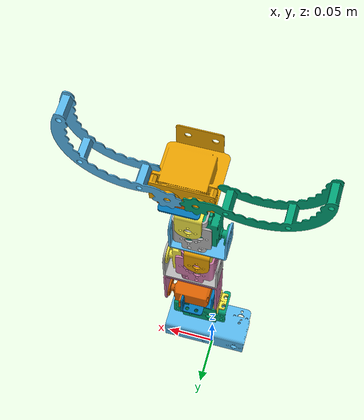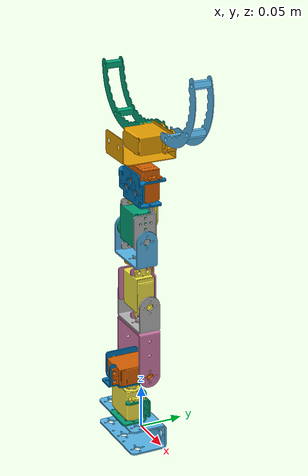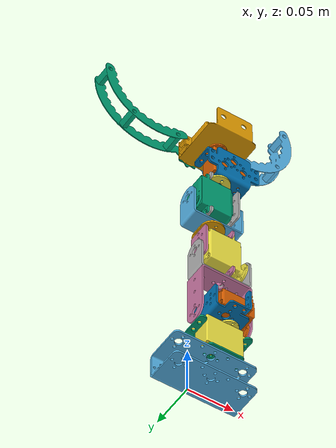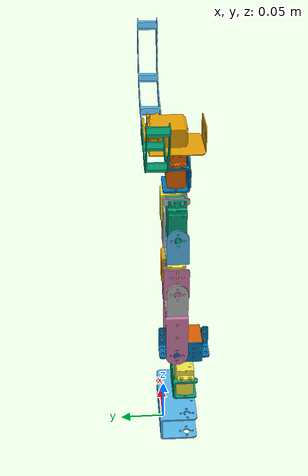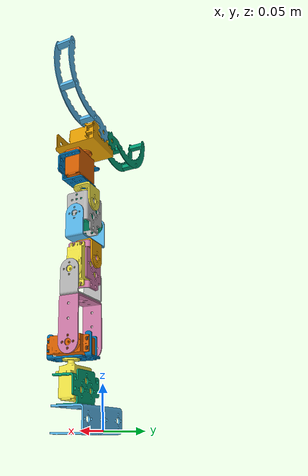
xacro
<?xml version="1.0" ?>
<robot name="pentabot"
  xmlns:xacro="http://www.ros.org/wiki/xacro">

  <xacro:arg name="is_sim" default="true"/>

  <xacro:include filename="$(find pentabot_description)/urdf/materials.xacro" />
  <xacro:include filename="$(find pentabot_description)/urdf/pentabot.trans" />
  <xacro:include filename="$(find pentabot_description)/urdf/pentabot_gazebo.xacro" />
  <xacro:include filename="$(find pentabot_description)/urdf/pentabot_ros2_control.xacro" />

  <xacro:property name="PI" value="3.14159"/>
  <xacro:property name="effort" value="30"/>
  <xacro:property name="velocity" value="10.0"/>

  <xacro:macro name="default_inertial" params="mass">
    <inertial>
      <mass value="${mass}"/>
      <inertia ixx="1.0" ixy="0.0" ixz="0.0" iyy="1.0" iyz="0.0" izz="1.0"/>
    </inertial>
  </xacro:macro>

  <link name = "world"/>

  <joint name="base_link_q=world_joint" type="fixed">
    <parent link="world"/>
    <child link="base_link"/>
  </joint>

  <link name="base_link">
    <xacro:default_inertial mass="1.0"/>
    <visual>
      <origin xyz="0 0 0" rpy="0 0 0"/>
      <geometry>
        <mesh filename="package://pentabot_description/meshes/base_link.stl" scale="0.001 0.001 0.001"/>
      </geometry>
      <material name="steel_satin"/>
    </visual>
    <collision>
      <origin xyz="0 0 0" rpy="0 0 0"/>
      <geometry>
        <mesh filename="package://pentabot_description/meshes/base_link.stl" scale="0.001 0.001 0.001"/>
      </geometry>
    </collision>
  </link>

  <link name="Servo_Bracket_-_U_Shaped_Defaut_v4_1">
    <xacro:default_inertial mass="1.0"/>
    <visual>
      <origin xyz="-0.008257 0.025556 -0.025987" rpy="0 0 0"/>
      <geometry>
        <mesh filename="package://pentabot_description/meshes/Servo_Bracket_-_U_Shaped_Defaut_v4_1.stl" scale="0.001 0.001 0.001"/>
      </geometry>
      <material name="steel_satin"/>
    </visual>
    <collision>
      <origin xyz="-0.008257 0.025556 -0.025987" rpy="0 0 0"/>
      <geometry>
        <mesh filename="package://pentabot_description/meshes/Servo_Bracket_-_U_Shaped_Defaut_v4_1.stl" scale="0.001 0.001 0.001"/>
      </geometry>
    </collision>
  </link>

  <link name="Standard_Servo__1501MG__v3_1">
    <xacro:default_inertial mass="1.0"/>
    <visual>
      <origin xyz="-0.042757 0.030556 -0.058487" rpy="0 0 0"/>
      <geometry>
        <mesh filename="package://pentabot_description/meshes/Standard_Servo__1501MG__v3_1.stl" scale="0.001 0.001 0.001"/>
      </geometry>
      <material name="steel_satin"/>
    </visual>
    <collision>
      <origin xyz="-0.042757 0.030556 -0.058487" rpy="0 0 0"/>
      <geometry>
        <mesh filename="package://pentabot_description/meshes/Standard_Servo__1501MG__v3_1.stl" scale="0.001 0.001 0.001"/>
      </geometry>
    </collision>
  </link>

  <link name="Servo_Bracket_-_U_Shaped_Defaut_v4_2">
    <xacro:default_inertial mass="1.0"/>
    <visual>
      <origin xyz="-0.027957 0.025381 -0.075787" rpy="0 0 0"/>
      <geometry>
        <mesh filename="package://pentabot_description/meshes/Servo_Bracket_-_U_Shaped_Defaut_v4_2.stl" scale="0.001 0.001 0.001"/>
      </geometry>
      <material name="steel_satin"/>
    </visual>
    <collision>
      <origin xyz="-0.027957 0.025381 -0.075787" rpy="0 0 0"/>
      <geometry>
        <mesh filename="package://pentabot_description/meshes/Servo_Bracket_-_U_Shaped_Defaut_v4_2.stl" scale="0.001 0.001 0.001"/>
      </geometry>
    </collision>
  </link>

  <link name="Standard_Servo__1501MG__v3_2">
    <xacro:default_inertial mass="1.0"/>
    <visual>
      <origin xyz="-0.034457 0.000381 -0.095287" rpy="0 0 0"/>
      <geometry>
        <mesh filename="package://pentabot_description/meshes/Standard_Servo__1501MG__v3_2.stl" scale="0.001 0.001 0.001"/>
      </geometry>
      <material name="steel_satin"/>
    </visual>
    <collision>
      <origin xyz="-0.034457 0.000381 -0.095287" rpy="0 0 0"/>
      <geometry>
        <mesh filename="package://pentabot_description/meshes/Standard_Servo__1501MG__v3_2.stl" scale="0.001 0.001 0.001"/>
      </geometry>
    </collision>
  </link>

  <link name="Servo_Bracket_-_U_Shaped_bis_Defaut_v3_1">
    <xacro:default_inertial mass="1.0"/>
    <visual>
      <origin xyz="-0.051557 0.015181 -0.090112" rpy="0 0 0"/>
      <geometry>
        <mesh filename="package://pentabot_description/meshes/Servo_Bracket_-_U_Shaped_bis_Defaut_v3_1.stl" scale="0.001 0.001 0.001"/>
      </geometry>
      <material name="steel_satin"/>
    </visual>
    <collision>
      <origin xyz="-0.051557 0.015181 -0.090112" rpy="0 0 0"/>
      <geometry>
        <mesh filename="package://pentabot_description/meshes/Servo_Bracket_-_U_Shaped_bis_Defaut_v3_1.stl" scale="0.001 0.001 0.001"/>
      </geometry>
    </collision>
  </link>

  <link name="U_Bracket_Defaut_v3_1">
    <xacro:default_inertial mass="1.0"/>
    <visual>
      <origin xyz="-0.025557 0.015181 -0.143112" rpy="0 0 0"/>
      <geometry>
        <mesh filename="package://pentabot_description/meshes/U_Bracket_Defaut_v3_1.stl" scale="0.001 0.001 0.001"/>
      </geometry>
      <material name="steel_satin"/>
    </visual>
    <collision>
      <origin xyz="-0.025557 0.015181 -0.143112" rpy="0 0 0"/>
      <geometry>
        <mesh filename="package://pentabot_description/meshes/U_Bracket_Defaut_v3_1.stl" scale="0.001 0.001 0.001"/>
      </geometry>
    </collision>
  </link>

  <link name="Servo_Bracket_-_Corner_Mount_Defaut_v2_1">
    <xacro:default_inertial mass="1.0"/>
    <visual>
      <origin xyz="-0.017757 0.000506 -0.193812" rpy="0 0 0"/>
      <geometry>
        <mesh filename="package://pentabot_description/meshes/Servo_Bracket_-_Corner_Mount_Defaut_v2_1.stl" scale="0.001 0.001 0.001"/>
      </geometry>
      <material name="steel_satin"/>
    </visual>
    <collision>
      <origin xyz="-0.017757 0.000506 -0.193812" rpy="0 0 0"/>
      <geometry>
        <mesh filename="package://pentabot_description/meshes/Servo_Bracket_-_Corner_Mount_Defaut_v2_1.stl" scale="0.001 0.001 0.001"/>
      </geometry>
    </collision>
  </link>

  <link name="U_Bracket_Defaut_v3_2">
    <xacro:default_inertial mass="1.0"/>
    <visual>
      <origin xyz="-0.017757 0.014506 -0.215312" rpy="0 0 0"/>
      <geometry>
        <mesh filename="package://pentabot_description/meshes/U_Bracket_Defaut_v3_2.stl" scale="0.001 0.001 0.001"/>
      </geometry>
      <material name="steel_satin"/>
    </visual>
    <collision>
      <origin xyz="-0.017757 0.014506 -0.215312" rpy="0 0 0"/>
      <geometry>
        <mesh filename="package://pentabot_description/meshes/U_Bracket_Defaut_v3_2.stl" scale="0.001 0.001 0.001"/>
      </geometry>
    </collision>
  </link>

  <link name="Standard_Servo__1501MG__v3_4">
    <xacro:default_inertial mass="1.0"/>
    <visual>
      <origin xyz="0.008243 0.014506 -0.245312" rpy="0 0 0"/>
      <geometry>
        <mesh filename="package://pentabot_description/meshes/Standard_Servo__1501MG__v3_4.stl" scale="0.001 0.001 0.001"/>
      </geometry>
      <material name="steel_satin"/>
    </visual>
    <collision>
      <origin xyz="0.008243 0.014506 -0.245312" rpy="0 0 0"/>
      <geometry>
        <mesh filename="package://pentabot_description/meshes/Standard_Servo__1501MG__v3_4.stl" scale="0.001 0.001 0.001"/>
      </geometry>
    </collision>
  </link>

  <link name="Servo_Bracket_-_Corner_Mount_Defaut_v2_2">
    <xacro:default_inertial mass="1.0"/>
    <visual>
      <origin xyz="-0.025357 -0.000169 -0.266012" rpy="0 0 0"/>
      <geometry>
        <mesh filename="package://pentabot_description/meshes/Servo_Bracket_-_Corner_Mount_Defaut_v2_2.stl" scale="0.001 0.001 0.001"/>
      </geometry>
      <material name="steel_satin"/>
    </visual>
    <collision>
      <origin xyz="-0.025357 -0.000169 -0.266012" rpy="0 0 0"/>
      <geometry>
        <mesh filename="package://pentabot_description/meshes/Servo_Bracket_-_Corner_Mount_Defaut_v2_2.stl" scale="0.001 0.001 0.001"/>
      </geometry>
    </collision>
  </link>

  <link name="Servo_Bracket_-_U_Shaped_Defaut_v4_5">
    <xacro:default_inertial mass="1.0"/>
    <visual>
      <origin xyz="-0.025357 0.013831 -0.287512" rpy="0 0 0"/>
      <geometry>
        <mesh filename="package://pentabot_description/meshes/Servo_Bracket_-_U_Shaped_Defaut_v4_5.stl" scale="0.001 0.001 0.001"/>
      </geometry>
      <material name="steel_satin"/>
    </visual>
    <collision>
      <origin xyz="-0.025357 0.013831 -0.287512" rpy="0 0 0"/>
      <geometry>
        <mesh filename="package://pentabot_description/meshes/Servo_Bracket_-_U_Shaped_Defaut_v4_5.stl" scale="0.001 0.001 0.001"/>
      </geometry>
    </collision>
  </link>

  <link name="Standard_Servo__1501MG__v3_5">
    <xacro:default_inertial mass="1.0"/>
    <visual>
      <origin xyz="-0.009857 0.008831 -0.320012" rpy="0 0 0"/>
      <geometry>
        <mesh filename="package://pentabot_description/meshes/Standard_Servo__1501MG__v3_5.stl" scale="0.001 0.001 0.001"/>
      </geometry>
      <material name="steel_satin"/>
    </visual>
    <collision>
      <origin xyz="-0.009857 0.008831 -0.320012" rpy="0 0 0"/>
      <geometry>
        <mesh filename="package://pentabot_description/meshes/Standard_Servo__1501MG__v3_5.stl" scale="0.001 0.001 0.001"/>
      </geometry>
    </collision>
  </link>

  <link name="Servo_Bracket_-_U_Shaped_Defaut_v4_3">
    <xacro:default_inertial mass="1.0"/>
    <visual>
      <origin xyz="-0.034257 0.010006 -0.158312" rpy="0 0 0"/>
      <geometry>
        <mesh filename="package://pentabot_description/meshes/Servo_Bracket_-_U_Shaped_Defaut_v4_3.stl" scale="0.001 0.001 0.001"/>
      </geometry>
      <material name="steel_satin"/>
    </visual>
    <collision>
      <origin xyz="-0.034257 0.010006 -0.158312" rpy="0 0 0"/>
      <geometry>
        <mesh filename="package://pentabot_description/meshes/Servo_Bracket_-_U_Shaped_Defaut_v4_3.stl" scale="0.001 0.001 0.001"/>
      </geometry>
    </collision>
  </link>

  <link name="Servo_Bracket_-_U_Shaped_Defaut_v4_4">
    <xacro:default_inertial mass="1.0"/>
    <visual>
      <origin xyz="-0.008857 0.009331 -0.230512" rpy="0 0 0"/>
      <geometry>
        <mesh filename="package://pentabot_description/meshes/Servo_Bracket_-_U_Shaped_Defaut_v4_4.stl" scale="0.001 0.001 0.001"/>
      </geometry>
      <material name="steel_satin"/>
    </visual>
    <collision>
      <origin xyz="-0.008857 0.009331 -0.230512" rpy="0 0 0"/>
      <geometry>
        <mesh filename="package://pentabot_description/meshes/Servo_Bracket_-_U_Shaped_Defaut_v4_4.stl" scale="0.001 0.001 0.001"/>
      </geometry>
    </collision>
  </link>

  <link name="Gripz_v3_1">
    <xacro:default_inertial mass="1.0"/>
    <visual>
      <origin xyz="-0.024657 0.014006 -0.337312" rpy="0 0 0"/>
      <geometry>
        <mesh filename="package://pentabot_description/meshes/Gripz_v3_1.stl" scale="0.001 0.001 0.001"/>
      </geometry>
      <material name="steel_satin"/>
    </visual>
    <collision>
      <origin xyz="-0.024657 0.014006 -0.337312" rpy="0 0 0"/>
      <geometry>
        <mesh filename="package://pentabot_description/meshes/Gripz_v3_1.stl" scale="0.001 0.001 0.001"/>
      </geometry>
    </collision>
  </link>

  <link name="left-gripper_v4_1">
    <xacro:default_inertial mass="1.0"/>
    <visual>
      <origin xyz="-0.036357 -0.019994 -0.352787" rpy="0 0 0"/>
      <geometry>
        <mesh filename="package://pentabot_description/meshes/left-gripper_v4_1.stl" scale="0.001 0.001 0.001"/>
      </geometry>
      <material name="steel_satin"/>
    </visual>
    <collision>
      <origin xyz="-0.036357 -0.019994 -0.352787" rpy="0 0 0"/>
      <geometry>
        <mesh filename="package://pentabot_description/meshes/left-gripper_v4_1.stl" scale="0.001 0.001 0.001"/>
      </geometry>
    </collision>
  </link>

  <link name="right-gripper_v3_1">
    <xacro:default_inertial mass="1.0"/>
    <visual>
      <origin xyz="-0.012907 -0.019994 -0.352812" rpy="0 0 0"/>
      <geometry>
        <mesh filename="package://pentabot_description/meshes/right-gripper_v3_1.stl" scale="0.001 0.001 0.001"/>
      </geometry>
      <material name="steel_satin"/>
    </visual>
    <collision>
      <origin xyz="-0.012907 -0.019994 -0.352812" rpy="0 0 0"/>
      <geometry>
        <mesh filename="package://pentabot_description/meshes/right-gripper_v3_1.stl" scale="0.001 0.001 0.001"/>
      </geometry>
    </collision>
  </link>

  <link name="Standard_Servo__1501MG__v3_3">
    <xacro:default_inertial mass="1.0"/>
    <visual>
      <origin xyz="-0.051557 0.015181 -0.173112" rpy="0 0 0"/>
      <geometry>
        <mesh filename="package://pentabot_description/meshes/Standard_Servo__1501MG__v3_3.stl" scale="0.001 0.001 0.001"/>
      </geometry>
      <material name="steel_satin"/>
    </visual>
    <collision>
      <origin xyz="-0.051557 0.015181 -0.173112" rpy="0 0 0"/>
      <geometry>
        <mesh filename="package://pentabot_description/meshes/Standard_Servo__1501MG__v3_3.stl" scale="0.001 0.001 0.001"/>
      </geometry>
    </collision>
  </link>

  <joint name="Rigid 1" type="fixed">
    <origin xyz="0.008257 -0.025556 0.025987" rpy="0 0 0"/>
    <parent link="base_link"/>
    <child link="Servo_Bracket_-_U_Shaped_Defaut_v4_1"/>
  </joint>

  <joint name="Rigid 2" type="fixed">
    <origin xyz="0.0345 -0.005 0.0325" rpy="0 0 0"/>
    <parent link="Servo_Bracket_-_U_Shaped_Defaut_v4_1"/>
    <child link="Standard_Servo__1501MG__v3_1"/>
  </joint>

  <joint name="Revolute 3" type="revolute">
    <origin xyz="-0.0148 0.005175 0.0173" rpy="0 0 0"/>
    <parent link="Standard_Servo__1501MG__v3_1"/>
    <child link="Servo_Bracket_-_U_Shaped_Defaut_v4_2"/>
    <axis xyz="0.0 0.0 1.0"/>
    <limit lower="-${PI/2}" upper="${PI/2}" velocity="${velocity}" effort="${effort}"/>
  </joint>

  <joint name="Rigid 4" type="fixed">
    <origin xyz="0.0065 0.025 0.0195" rpy="0 0 0"/>
    <parent link="Servo_Bracket_-_U_Shaped_Defaut_v4_2"/>
    <child link="Standard_Servo__1501MG__v3_2"/>
  </joint>

  <joint name="Revolute 5" type="revolute">
    <origin xyz="0.0171 -0.0148 -0.005175" rpy="0 0 0"/>
    <parent link="Standard_Servo__1501MG__v3_2"/>
    <child link="Servo_Bracket_-_U_Shaped_bis_Defaut_v3_1"/>
    <axis xyz="-1.0 0.0 0.0"/>
    <limit lower="-${PI/2}" upper="${PI/2}" velocity="${velocity}" effort="${effort}"/>
  </joint>

  <joint name="Rigid 6" type="fixed">
    <origin xyz="-0.026 0.0 0.053" rpy="0 0 0"/>
    <parent link="Servo_Bracket_-_U_Shaped_bis_Defaut_v3_1"/>
    <child link="U_Bracket_Defaut_v3_1"/>
  </joint>

  <joint name="Revolute 7" type="continuous">
    <origin xyz="0.026 0.0 0.03" rpy="0 0 0"/>
    <parent link="U_Bracket_Defaut_v3_1"/>
    <child link="Standard_Servo__1501MG__v3_3"/>
    <limit lower="-${PI/2}" upper="${PI/2}" velocity="${velocity}" effort="${effort}"/>
    <axis xyz="-1.0 0.0 0.0"/>
  </joint>

  <joint name="Rigid 9" type="fixed">
    <origin xyz="-0.0165 0.0095 0.0355" rpy="0 0 0"/>
    <parent link="Servo_Bracket_-_U_Shaped_Defaut_v4_3"/>
    <child link="Servo_Bracket_-_Corner_Mount_Defaut_v2_1"/>
  </joint>

  <joint name="Rigid 10" type="fixed">
    <origin xyz="0.0 -0.014 0.0215" rpy="0 0 0"/>
    <parent link="Servo_Bracket_-_Corner_Mount_Defaut_v2_1"/>
    <child link="U_Bracket_Defaut_v3_2"/>
  </joint>

  <joint name="Revolute 11" type="revolute">
    <origin xyz="-0.026 0.0 0.03" rpy="0 0 0"/>
    <parent link="U_Bracket_Defaut_v3_2"/>
    <child link="Standard_Servo__1501MG__v3_4"/>
    <axis xyz="1.0 0.0 0.0"/>
    <limit lower="-${PI/2}" upper="${PI/2}" velocity="${velocity}" effort="${effort}"/>
  </joint>

  <joint name="Rigid 13" type="fixed">
    <origin xyz="0.0165 0.0095 0.0355" rpy="0 0 0"/>
    <parent link="Servo_Bracket_-_U_Shaped_Defaut_v4_4"/>
    <child link="Servo_Bracket_-_Corner_Mount_Defaut_v2_2"/>
  </joint>

  <joint name="Rigid 14" type="fixed">
    <origin xyz="0.0 -0.014 0.0215" rpy="0 0 0"/>
    <parent link="Servo_Bracket_-_Corner_Mount_Defaut_v2_2"/>
    <child link="Servo_Bracket_-_U_Shaped_Defaut_v4_5"/>
  </joint>

  <joint name="Rigid 15" type="fixed">
    <origin xyz="-0.0155 0.005 0.0325" rpy="0 0 0"/>
    <parent link="Servo_Bracket_-_U_Shaped_Defaut_v4_5"/>
    <child link="Standard_Servo__1501MG__v3_5"/>
  </joint>

  <joint name="Rigid 16" type="fixed">
    <origin xyz="-0.0173 0.005175 -0.0148" rpy="0 0 0"/>
    <parent link="Standard_Servo__1501MG__v3_3"/>
    <child link="Servo_Bracket_-_U_Shaped_Defaut_v4_3"/>
  </joint>

  <joint name="Rigid 17" type="fixed">
    <origin xyz="0.0171 0.005175 -0.0148" rpy="0 0 0"/>
    <parent link="Standard_Servo__1501MG__v3_4"/>
    <child link="Servo_Bracket_-_U_Shaped_Defaut_v4_4"/>
  </joint>

  <joint name="Revolute 19" type="revolute">
    <origin xyz="0.0148 -0.005175 0.0173" rpy="0 0 0"/>
    <parent link="Standard_Servo__1501MG__v3_5"/>
    <child link="Gripz_v3_1"/>
    <axis xyz="-0.0 0.0 1.0"/>
    <limit lower="-${PI/2}" upper="${PI/2}" velocity="${velocity}" effort="${effort}"/>
  </joint>

  <joint name="Revolute 21" type="continuous">
    <origin xyz="0.0117 0.034 0.015475" rpy="0 0 0"/>
    <parent link="Gripz_v3_1"/>
    <child link="left-gripper_v4_1"/>
    <limit lower="-${PI/2}" upper="0.0" velocity="${velocity}" effort="${effort}"/>
    <axis xyz="-0.0 1.0 -0.0"/>
  </joint>

  <joint name="Revolute 22" type="continuous">
    <origin xyz="-0.01175 0.034 0.0155" rpy="0 0 0"/>
    <parent link="Gripz_v3_1"/>
    <child link="right-gripper_v3_1"/>
    <limit lower="0.0" upper="${PI/2}" velocity="${velocity}" effort="${effort}"/>
    <mimic joint="Revolute 21" multiplier="-1"/>
    <axis xyz="-0.0 1.0 -0.0"/>
  </joint>

</robot>
